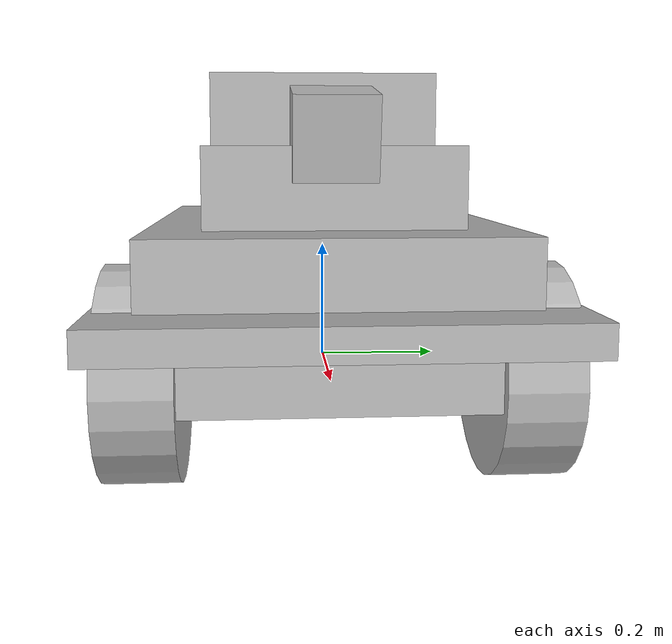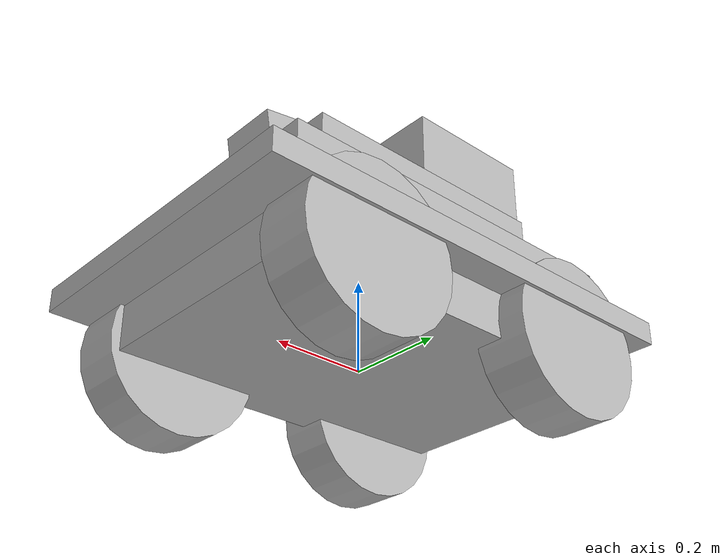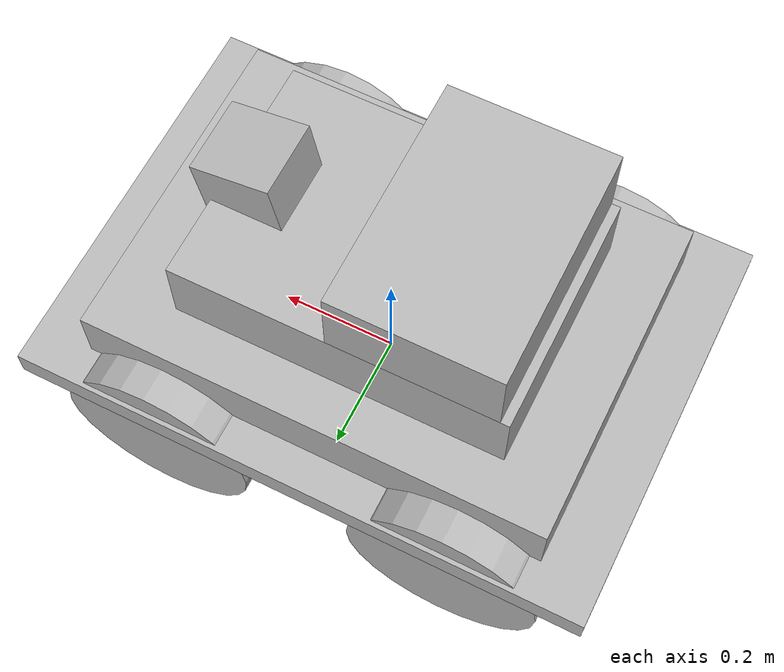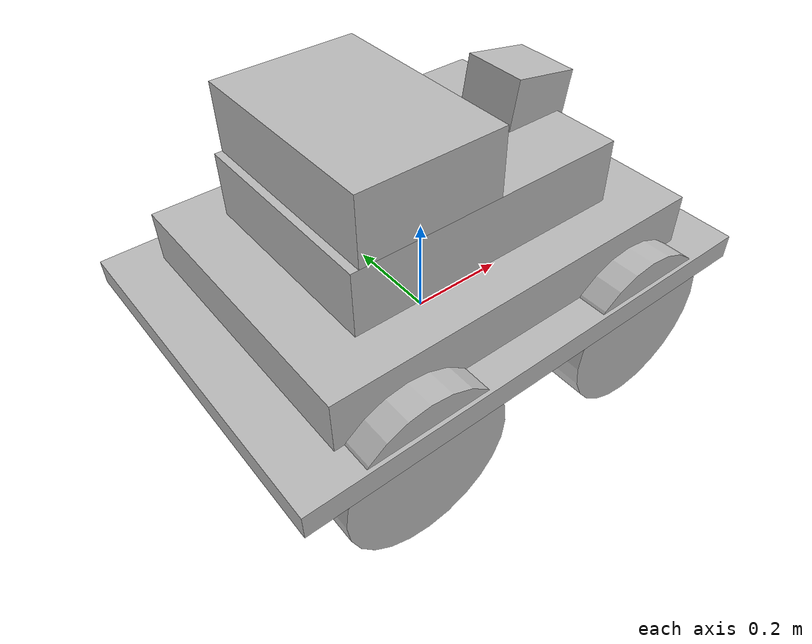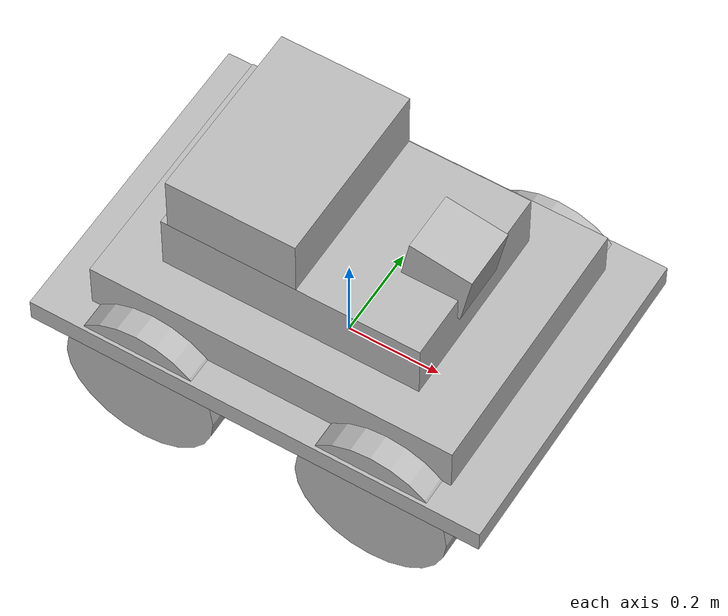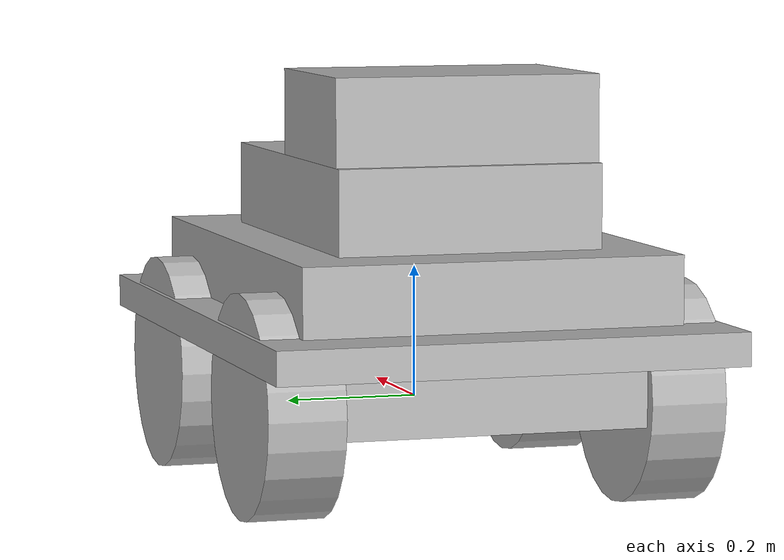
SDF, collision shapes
<?xml version='1.0' encoding='utf-8'?>
<sdf version="1.7">
  <model name="marble_husky_sensor_config_1">
    <static>false</static>

    <link name="base_link">
      <pose>0 0 0 0 0 0</pose>
      <inertial>
        <pose>-0.000543 -0.084945 0.062329 0 0 0</pose>
        <mass>41.064</mass>
        <inertia>
          <ixx>0.615397</ixx>
          <ixy>-0.0240585</ixy>
          <ixz>-0.120749</ixz>
          <iyy>1.75388</iyy>
          <iyz>-0.0028322</iyz>
          <izz>2.03641</izz>
        </inertia>
      </inertial>
      <collision name="base_link_collision">
        <pose>0 0 0.12 0 0 0</pose>
        <geometry>
          <box>
            <size>0.9874 0.7 0.05</size>
          </box>
        </geometry>
      </collision>
      <collision name="base_link_collision_bottom">
        <pose>0 0 0.046 0 0 0</pose>
        <geometry>
          <box>
            <size>0.80 0.5709 0.095</size>
          </box>
        </geometry>
      </collision>
      <collision name="base_link_collision_1">
        <pose>0 0 0.185625 0 0 0</pose>
        <geometry>
          <box>
            <size>0.78992 0.5709 0.12375</size>
          </box>
        </geometry>
      </collision>

      <visual name="base_link_visual">
        <pose>0 0 0 0 0 0</pose>
        <geometry>
          <mesh>
            <scale>1 1 1</scale>
            <uri>meshes/base_link.dae</uri>
          </mesh>
        </geometry>
      </visual>
      <visual name="base_link_fixed_joint_lump__front_bumper_link_visual_3">
        <pose>0.48 0 0.091 0 0 0</pose>
        <geometry>
          <mesh>
            <scale>1 1 1</scale>
            <uri>meshes/bumper.dae</uri>
          </mesh>
        </geometry>
      </visual>
      <visual name="base_link_fixed_joint_lump__rear_bumper_link_visual_4">
        <pose>-0.48 0 0.091 0 0 3.14159</pose>
        <geometry>
          <mesh>
            <scale>1 1 1</scale>
            <uri>meshes/bumper.dae</uri>
          </mesh>
        </geometry>
      </visual>
      <visual name="base_link_fixed_joint_lump__top_chassis_link_visual_5">
        <pose>0 0 0 0 0 0</pose>
        <geometry>
          <mesh>
            <scale>1 1 1</scale>
            <uri>meshes/top_chassis.dae</uri>
          </mesh>
        </geometry>
      </visual>

      <velocity_decay />
      <self_collide>0</self_collide>
      <enable_wind>0</enable_wind>
      <kinematic>0</kinematic>

      <!-- 碰撞传感器 -->
      <sensor name="bumper" type="contact">
        <update_rate>30.0</update_rate>
        <always_on>true</always_on>
        <contact>
          <collision>base_link_collision</collision>
        </contact>
        <plugin name="gazebo_ros_bumper_controller" filename="libgazebo_ros_bumper.so">
            <alwaysOn>true</alwaysOn>
            <updateRate>30.0</updateRate>
            <bumperTopicName>bumper_states</bumperTopicName>
            <frameName>base_link</frameName>
            <visualize>true</visualize>
        </plugin>
      </sensor>
    </link>

    <link name='sensor_rack'>
      <inertial>   <!-- Based on the CAD of the sensor rack (metal plates, ITEM tubes, sensors) -->
        <mass>10.40255</mass>
        <inertia>
          <ixx>0.193</ixx>
          <ixy>-0.0031</ixy>
          <ixz>0.00912</ixz>
          <iyy>0.301</iyy>
          <iyz>0.00313</iyz>
          <izz>0.35676</izz>
        </inertia>
        <pose>0.28 0.2 0.06 0 0 0</pose>
      </inertial>
      <pose>-0.283 -0.198243 0.224 -1e-06 0 -1.3e-05</pose>
      <self_collide>0</self_collide>
      <enable_wind>0</enable_wind>
      <kinematic>0</kinematic>
      <visual name='visual'>
        <pose>0 0 0 0 0 0</pose>
        <geometry>
          <mesh>
            <uri>meshes/sensor_rack_lowres_shallow_laser.dae</uri>
            <scale>1 1 1</scale>
          </mesh>
        </geometry>
        <transparency>0</transparency>
        <cast_shadows>1</cast_shadows>
      </visual>
      <collision name='collision_base'>
        <laser_retro>0</laser_retro>
        <max_contacts>10</max_contacts>
        <pose>0.275 0.2 0.075 0 0 0</pose>
        <geometry>
          <box>
            <size>0.56 0.4 0.15</size>
          </box>
        </geometry>
        <surface>
          <friction>
            <ode>
              <mu>1</mu>
              <mu2>1</mu2>
              <fdir1>0 0 0</fdir1>
              <slip1>0</slip1>
              <slip2>0</slip2>
            </ode>
          </friction>
          <contact>
            <collide_without_contact>0</collide_without_contact>
            <collide_without_contact_bitmask>1</collide_without_contact_bitmask>
            <collide_bitmask>1</collide_bitmask>
            <ode>
              <soft_cfm>0</soft_cfm>
              <soft_erp>0.2</soft_erp>
              <kp>1e+13</kp>
              <kd>1</kd>
              <max_vel>0.01</max_vel>
              <min_depth>0</min_depth>
            </ode>
          </contact>
        </surface>
      </collision>
      <collision name='collision_top'>
        <laser_retro>0</laser_retro>
        <max_contacts>10</max_contacts>
        <pose>0.15 0.2 0.215 0 0 0</pose>
        <geometry>
          <box>
            <size>0.28 0.4 0.13</size>
          </box>
        </geometry>
        <surface>
          <friction>
            <ode>
              <mu>1</mu>
              <mu2>1</mu2>
              <fdir1>0 0 0</fdir1>
              <slip1>0</slip1>
              <slip2>0</slip2>
            </ode>
          </friction>
          <contact>
            <collide_without_contact>0</collide_without_contact>
            <collide_without_contact_bitmask>1</collide_without_contact_bitmask>
            <collide_bitmask>1</collide_bitmask>
            <ode>
              <soft_cfm>0</soft_cfm>
              <soft_erp>0.2</soft_erp>
              <kp>1e+13</kp>
              <kd>1</kd>
              <max_vel>0.01</max_vel>
              <min_depth>0</min_depth>
            </ode>
          </contact>
        </surface>
      </collision>
      <collision name='collision_laser'>
        <laser_retro>0</laser_retro>
        <max_contacts>10</max_contacts>
        <pose>0.505 0.2 0.17 0 0.17 0</pose>
        <geometry>
          <box>
            <size>0.135 0.13 0.13</size>
          </box>
        </geometry>
        <surface>
          <friction>
            <ode>
              <mu>1</mu>
              <mu2>1</mu2>
              <fdir1>0 0 0</fdir1>
              <slip1>0</slip1>
              <slip2>0</slip2>
            </ode>
          </friction>
          <contact>
            <collide_without_contact>0</collide_without_contact>
            <collide_without_contact_bitmask>1</collide_without_contact_bitmask>
            <collide_bitmask>1</collide_bitmask>
            <ode>
              <soft_cfm>0</soft_cfm>
              <soft_erp>0.2</soft_erp>
              <kp>1e+13</kp>
              <kd>1</kd>
              <max_vel>0.01</max_vel>
              <min_depth>0</min_depth>
            </ode>
          </contact>
        </surface>
      </collision>

      <sensor name="imu_sensor" type="imu">
        <always_on>1</always_on>
        <update_rate>50</update_rate>
        <imu>
          <enable_orientation>0</enable_orientation>
          <angular_velocity>
            <x>
              <noise type="gaussian">
                <mean>0</mean>
                <stddev>0.009</stddev>
                <bias_mean>0.00075</bias_mean>
                <bias_stddev>0.005</bias_stddev>
                <dynamic_bias_stddev>0.00002</dynamic_bias_stddev>
                <dynamic_bias_correlation_time>400.0</dynamic_bias_correlation_time>
                <precision>0.00025</precision>
              </noise>
            </x>
            <y>
              <noise type="gaussian">
                <mean>0</mean>
                <stddev>0.009</stddev>
                <bias_mean>0.00075</bias_mean>
                <bias_stddev>0.005</bias_stddev>
                <dynamic_bias_stddev>0.00002</dynamic_bias_stddev>
                <dynamic_bias_correlation_time>400.0</dynamic_bias_correlation_time>
                <precision>0.00025</precision>
              </noise>
            </y>
            <z>
              <noise type="gaussian">
                <mean>0</mean>
                <stddev>0.009</stddev>
                <bias_mean>0.00075</bias_mean>
                <bias_stddev>0.005</bias_stddev>
                <dynamic_bias_stddev>0.00002</dynamic_bias_stddev>
                <dynamic_bias_correlation_time>400.0</dynamic_bias_correlation_time>
                <precision>0.00025</precision>
              </noise>
            </z>
          </angular_velocity>
          <linear_acceleration>
            <x>
              <noise type="gaussian">
                <mean>0</mean>
                <stddev>0.021</stddev>
                <bias_mean>0.05</bias_mean>
                <bias_stddev>0.0075</bias_stddev>
                <dynamic_bias_stddev>0.000375</dynamic_bias_stddev>
                <dynamic_bias_correlation_time>175.0</dynamic_bias_correlation_time>
                <precision>0.005</precision>
              </noise>
            </x>
            <y>
              <noise type="gaussian">
                <mean>0</mean>
                <stddev>0.021</stddev>
                <bias_mean>0.05</bias_mean>
                <bias_stddev>0.0075</bias_stddev>
                <dynamic_bias_stddev>0.000375</dynamic_bias_stddev>
                <dynamic_bias_correlation_time>175.0</dynamic_bias_correlation_time>
                <precision>0.005</precision>
              </noise>
            </y>
            <z>
              <noise type="gaussian">
                <mean>0</mean>
                <stddev>0.021</stddev>
                <bias_mean>0.05</bias_mean>
                <bias_stddev>0.0075</bias_stddev>
                <dynamic_bias_stddev>0.000375</dynamic_bias_stddev>
                <dynamic_bias_correlation_time>175.0</dynamic_bias_correlation_time>
                <precision>0.005</precision>
              </noise>
            </z>
          </linear_acceleration>
        </imu>
        <plugin filename="libgazebo_ros_imu_sensor.so" name="imu_plugin">
          <robotNamespace>/</robotNamespace>
          <topicName>imu</topicName>
          <bodyName>imu_link</bodyName>
          <updateRateHZ>10.0</updateRateHZ>
          <gaussianNoise>0.0</gaussianNoise>
          <xyzOffset>0 0 0</xyzOffset>
          <rpyOffset>0 0 0</rpyOffset>
          <frameName>imu_link</frameName>
          <initialOrientationAsReference>false</initialOrientationAsReference>
        </plugin>
      </sensor>

      <!-- right_front_camera -->
      <sensor name="camera_0" type="camera">
        <camera name="camera_0">
          <horizontal_fov>1.50971</horizontal_fov>
          <image>
            <width>640</width>
            <height>480</height>
            <format>R8G8B8</format>
          </image>
          <clip>
            <near>0.1</near>
            <far>300</far>
          </clip>
          <noise>
            <type>gaussian</type>
            <mean>0</mean>
            <stddev>0.007</stddev>
          </noise>
          <lens>
            <intrinsics>
              <fx>337.22195</fx>
              <fy>337.22195</fy>
              <cx>320.5</cx>
              <cy>240.5</cy>
              <s>0</s>
            </intrinsics>
            <type>stereographic</type>
            <scale_to_hfov>1</scale_to_hfov>
          </lens>
        </camera>
        <always_on>1</always_on>
        <update_rate>9</update_rate>
        <visualize>1</visualize>
        <pose>0.5 0.2 0.1 0 -0.1 0</pose>
        <plugin name="camera_controller" filename="libgazebo_ros_camera.so">
          <robotNamespace>/</robotNamespace>
          <alwaysOn>true</alwaysOn>
          <updateRate>0.0</updateRate>
          <cameraName>mycar/camera_right</cameraName>
          <imageTopicName>image_raw_right</imageTopicName>
          <cameraInfoTopicName>camera_info</cameraInfoTopicName>
          <frameName>sensor_rack</frameName>
          <hackBaseline>0.07</hackBaseline>
          <distortionK1>0.0</distortionK1>
          <distortionK2>0.0</distortionK2>
          <distortionK3>0.0</distortionK3>
          <distortionT1>0.0</distortionT1>
          <distortionT2>0.0</distortionT2>
        </plugin>
      </sensor>

      <!-- left_front_camera -->

      <!-- Robosense RS-LiDAR-16 or Leishen C16 Series -->

      <sensor name="front_lidar" type="gpu_lidar">
        <always_on>1</always_on>
        <update_rate>10</update_rate>
        <visualize>0</visualize>
        <pose>0.507 0.19955 0.20879 0 0.17 0</pose>
        <topic>lidar</topic>
        <ray>
          <scan>
            <horizontal>
              <samples>1800</samples>
              <resolution>1</resolution>
              <min_angle>-3.141592</min_angle>
              <max_angle>3.141592</max_angle>
            </horizontal>
            <vertical>
              <samples>16</samples>
              <resolution>1</resolution>
              <min_angle>-0.26</min_angle>
              <max_angle>0.26</max_angle>
            </vertical>
          </scan>
          <range>
            <min>0.2</min>
            <max>30</max>
            <resolution>0.01</resolution>
          </range>
          <noise>
            <type>gaussian</type>
            <mean>0</mean>
            <stddev>0.01</stddev>
          </noise>
        </ray>
        <plugin name="gazebo_ros_head_hokuyo_controller" filename="libgazebo_ros_gpu_laser.so">
          <robotNamespace>/</robotNamespace>
          <topicName>mycar/laser/scan</topicName>
          <frameName>hokuyo_link</frameName>
        </plugin>
      </sensor>

    </link>

    <joint name='base_link_JOINT_0' type='fixed'>
      <parent>base_link</parent>
      <child>sensor_rack</child>
      <pose>0 0 0 0 0 0</pose>
      <physics>
        <ode>
          <constraints>
            <cfm>0</cfm>
            <erp>0.2</erp>
          </constraints>
        </ode>
      </physics>
    </joint>

    <link name="front_left_wheel_link">
      <pose>0.256 0.2854 0.03282 0 -0 0</pose>
      <inertial>
        <pose>0 0 0 0 0 0</pose>
        <mass>2.637</mass>
        <inertia>
          <ixx>0.02467</ixx>
          <ixy>0</ixy>
          <ixz>0</ixz>
          <iyy>0.04411</iyy>
          <iyz>0</iyz>
          <izz>0.02467</izz>
        </inertia>
      </inertial>
      <collision name="front_left_wheel_link_collision">
        <pose>0 0 0 1.5707963267948966 0 0</pose>
        <geometry>
          <cylinder>
            <length>0.1143</length>
            <radius>0.1651</radius>
          </cylinder>
        </geometry>
        <surface>
          <contact>
            <ode>
              <kp>1e+07</kp>
              <kd>1</kd>
            </ode>
          </contact>
          <friction>
            <ode>
              <mu>0.5</mu>
              <mu2>1</mu2>
              <slip1>0.00062</slip1>
              <slip2>0</slip2>
              <fdir1>0 0 1</fdir1>
            </ode>
          </friction>
        </surface>
      </collision>
      <visual name="front_left_wheel_link_visual">
        <pose>0 0 0 0 0 0</pose>
        <geometry>
          <mesh>
            <scale>1 1 1</scale>
            <uri>meshes/wheel.dae</uri>
          </mesh>
        </geometry>
      </visual>
      <gravity>1</gravity>
      <velocity_decay />
    </link>

    <joint name="front_left_wheel_joint" type="revolute">
      <child>front_left_wheel_link</child>
      <parent>base_link</parent>
      <axis>
        <xyz>0 1 0</xyz>
        <limit>
          <lower>-1e+16</lower>
          <upper>1e+16</upper>
        </limit>
        <dynamics>
          <spring_reference>0</spring_reference>
          <spring_stiffness>0</spring_stiffness>
        </dynamics>
      </axis>
    </joint>

    <link name="front_right_wheel_link">
      <pose>0.256 -0.2854 0.03282 0 0 0</pose>
      <inertial>
        <pose>0 0 0 0 0 0</pose>
        <mass>2.637</mass>
        <inertia>
          <ixx>0.02467</ixx>
          <ixy>0</ixy>
          <ixz>0</ixz>
          <iyy>0.04411</iyy>
          <iyz>0</iyz>
          <izz>0.02467</izz>
        </inertia>
      </inertial>
      <collision name="front_right_wheel_link_collision">
        <pose>0 0 0 1.5707963267948966 0 0</pose>
        <geometry>
          <cylinder>
            <length>0.1143</length>
            <radius>0.1651</radius>
          </cylinder>
        </geometry>
        <surface>
          <contact>
            <ode>
              <kp>1e+07</kp>
              <kd>1</kd>
            </ode>
          </contact>
          <friction>
            <ode>
              <mu>0.5</mu>
              <mu2>1</mu2>
              <slip1>0.00062</slip1>
              <slip2>0</slip2>
              <fdir1>0 0 1</fdir1>
            </ode>
          </friction>
        </surface>
      </collision>
      <visual name="front_right_wheel_link_visual">
        <pose>0 0 0 0 0 0</pose>
        <geometry>
          <mesh>
            <scale>1 1 1</scale>
            <uri>meshes/wheel.dae</uri>
          </mesh>
        </geometry>
      </visual>
      <gravity>1</gravity>
      <velocity_decay />
    </link>

    <joint name="front_right_wheel_joint" type="revolute">
      <child>front_right_wheel_link</child>
      <parent>base_link</parent>
      <axis>
        <xyz>0 1 0</xyz>
        <limit>
          <lower>-1e+16</lower>
          <upper>1e+16</upper>
        </limit>
        <dynamics>
          <spring_reference>0</spring_reference>
          <spring_stiffness>0</spring_stiffness>
        </dynamics>
      </axis>
    </joint>

    <link name="rear_left_wheel_link">
      <pose>-0.256 0.2854 0.03282 0 0 0</pose>
      <inertial>
        <pose>0 0 0 0 0 0</pose>
        <mass>2.637</mass>
        <inertia>
          <ixx>0.02467</ixx>
          <ixy>0</ixy>
          <ixz>0</ixz>
          <iyy>0.04411</iyy>
          <iyz>0</iyz>
          <izz>0.02467</izz>
        </inertia>
      </inertial>
      <collision name="rear_left_wheel_link_collision">
        <pose>0 0 0 1.5707963267948966 0 0</pose>
        <geometry>
          <cylinder>
            <length>0.1143</length>
            <radius>0.1651</radius>
          </cylinder>
        </geometry>
        <surface>
          <contact>
            <ode>
              <kp>1e+07</kp>
              <kd>1</kd>
            </ode>
          </contact>
          <friction>
            <ode>
              <mu>0.5</mu>
              <mu2>1</mu2>
              <slip1>0.00062</slip1>
              <slip2>0</slip2>
              <fdir1>0 0 1</fdir1>
            </ode>
          </friction>
        </surface>
      </collision>
      <visual name="rear_left_wheel_link_visual">
        <pose>0 0 0 0 0 0</pose>
        <geometry>
          <mesh>
            <scale>1 1 1</scale>
            <uri>meshes/wheel.dae</uri>
          </mesh>
        </geometry>
      </visual>
      <gravity>1</gravity>
      <velocity_decay />
    </link>

    <joint name="rear_left_wheel_joint" type="revolute">
      <child>rear_left_wheel_link</child>
      <parent>base_link</parent>
      <axis>
        <xyz>0 1 0</xyz>
        <limit>
          <lower>-1e+16</lower>
          <upper>1e+16</upper>
        </limit>
        <dynamics>
          <spring_reference>0</spring_reference>
          <spring_stiffness>0</spring_stiffness>
        </dynamics>
      </axis>
    </joint>

    <link name="rear_right_wheel_link">
      <pose>-0.256 -0.2854 0.03282 0 0 0</pose>
      <inertial>
        <pose>0 0 0 0 0 0</pose>
        <mass>2.637</mass>
        <inertia>
          <ixx>0.02467</ixx>
          <ixy>0</ixy>
          <ixz>0</ixz>
          <iyy>0.04411</iyy>
          <iyz>0</iyz>
          <izz>0.02467</izz>
        </inertia>
      </inertial>
      <collision name="rear_right_wheel_link_collision">
        <pose>0 0 0 1.5707963267948966 0 0</pose>
        <geometry>
          <cylinder>
            <length>0.1143</length>
            <radius>0.1651</radius>
          </cylinder>
        </geometry>
        <surface>
          <contact>
            <ode>
              <kp>1e+07</kp>
              <kd>1</kd>
            </ode>
          </contact>
          <friction>
            <ode>
              <mu>0.5</mu>
              <mu2>1</mu2>
              <slip1>0.00062</slip1>
              <slip2>0</slip2>
              <fdir1>0 0 1</fdir1>
            </ode>
          </friction>
        </surface>
      </collision>
      <visual name="rear_right_wheel_link_visual">
        <pose>0 0 0 0 0 0</pose>
        <geometry>
          <mesh>
            <scale>1 1 1</scale>
            <uri>meshes/wheel.dae</uri>
          </mesh>
        </geometry>
      </visual>
      <gravity>1</gravity>
      <velocity_decay />
    </link>

    <joint name="rear_right_wheel_joint" type="revolute">
      <child>rear_right_wheel_link</child>
      <parent>base_link</parent>
      <axis>
        <xyz>0 1 0</xyz>
        <limit>
          <lower>-1e+16</lower>
          <upper>1e+16</upper>
        </limit>
        <dynamics>
          <spring_reference>0</spring_reference>
          <spring_stiffness>0</spring_stiffness>
        </dynamics>
      </axis>
    </joint>

    <!-- plugins -->

    <plugin name="skid_steer_drive_controller" filename="libgazebo_ros_skid_steer_drive.so">
      <updateRate>100.0</updateRate>
      <robotNamespace>/</robotNamespace>
      <publishTf>1</publishTf>
      <leftFrontJoint>front_left_wheel_joint</leftFrontJoint>     <!-- 左前 -->
      <rightFrontJoint>front_right_wheel_joint</rightFrontJoint>  <!-- 右前 -->
      <leftRearJoint>rear_left_wheel_joint</leftRearJoint>        <!-- 左后 -->
      <rightRearJoint>rear_right_wheel_joint</rightRearJoint>     <!-- 右后 -->
      <wheelSeparation>0.5709</wheelSeparation>             <!-- 轮距 -->
      <wheelDiameter>0.1651 * 2</wheelDiameter>  <!-- 车轮直径 -->
      <torque>20</torque>
      <topicName>cmd_vel</topicName>
      <broadcastTF>true</broadcastTF>  <!-- 里程计相关 -->
      <commandTopic>cmd_vel</commandTopic> <!-- 运动控制话题 -->
      <odometryFrame>odom</odometryFrame>
      <odometryTopic>odom</odometryTopic> <!-- 里程计话题 -->
      <robotBaseFrame>base_link_JOINT_0</robotBaseFrame>
      <publishOdomTF>true</publishOdomTF> <!-- 里程计相关，odom -->
      <covariance_x>0.0001</covariance_x>
      <covariance_y>0.0001</covariance_y>
      <covariance_yaw>0.01</covariance_yaw>
    </plugin>

  </model>
</sdf>
